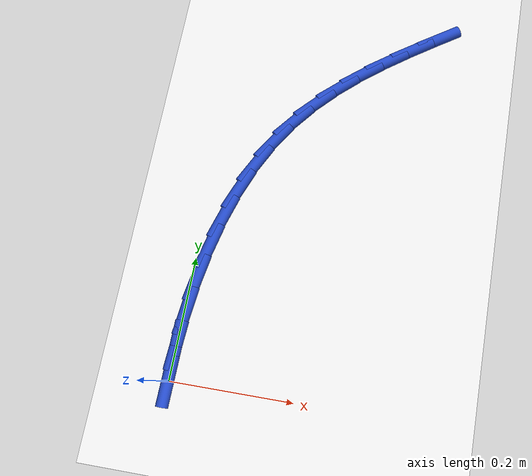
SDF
<sdf version="1.6">
 <world name="default">
  <model name="ground_plane">
   <static>1</static>
   <link name="link">
    <collision name="collision">
     <geometry><plane><normal>0 0 1</normal><size>100 100</size></plane></geometry>
     <surface><friction><ode><mu>100</mu><mu2>50</mu2></ode></friction></surface>
    </collision>
    <visual name="visual">
     <cast_shadows>0</cast_shadows>
     <geometry><plane><normal>0 0 1</normal><size>100 100</size></plane></geometry>
     <material>
      <script><uri>file://media/materials/scripts/gazebo.material</uri><name>Gazebo/WhiteGlow</name></script>
     </material>
    </visual>
   </link>
  </model>
  <model name="line">
   <link name="link_0">
    <pose>-6.938893903907228e-18 6.938893903907228e-17 0.01 0 1.57 1.5580120009399903</pose>
    <collision name="collision">
     <geometry><cylinder><radius>0.01</radius><length>0.08</length></cylinder></geometry>
    </collision>
    <visual name="visual">
     <material>
      <script><name>Gazebo/Blue</name><uri>file://media/materials/scripts/gazebo.material</uri></script>
     </material>
     <geometry><cylinder><radius>0.01</radius><length>0.08</length></cylinder></geometry>
    </visual>
   </link>
   <link name="link_1">
    <pose>0.0007160228598828777 0.05600481862712347 0.01 0 1.57 1.5114955153325835</pose>
    <collision name="collision">
     <geometry><cylinder><radius>0.01</radius><length>0.08</length></cylinder></geometry>
    </collision>
    <visual name="visual">
     <material>
      <script><name>Gazebo/Blue</name><uri>file://media/materials/scripts/gazebo.material</uri></script>
     </material>
     <geometry><cylinder><radius>0.01</radius><length>0.08</length></cylinder></geometry>
    </visual>
   </link>
   <link name="link_2">
    <pose>0.00403831065794808 0.11196345447744092 0.01 0 1.57 1.4606617564750028</pose>
    <collision name="collision">
     <geometry><cylinder><radius>0.01</radius><length>0.08</length></cylinder></geometry>
    </collision>
    <visual name="visual">
     <material>
      <script><name>Gazebo/Blue</name><uri>file://media/materials/scripts/gazebo.material</uri></script>
     </material>
     <geometry><cylinder><radius>0.01</radius><length>0.08</length></cylinder></geometry>
    </visual>
   </link>
   <link name="link_3">
    <pose>0.010165736958461995 0.16737413767874326 0.01 0 1.57 1.4043721562110711</pose>
    <collision name="collision">
     <geometry><cylinder><radius>0.01</radius><length>0.08</length></cylinder></geometry>
    </collision>
    <visual name="visual">
     <material>
      <script><name>Gazebo/Blue</name><uri>file://media/materials/scripts/gazebo.material</uri></script>
     </material>
     <geometry><cylinder><radius>0.01</radius><length>0.08</length></cylinder></geometry>
    </visual>
   </link>
   <link name="link_4">
    <pose>0.019297175325691 0.22173509835882108 0.01 0 1.57 1.3413468449461108</pose>
    <collision name="collision">
     <geometry><cylinder><radius>0.01</radius><length>0.08</length></cylinder></geometry>
    </collision>
    <visual name="visual">
     <material>
      <script><name>Gazebo/Blue</name><uri>file://media/materials/scripts/gazebo.material</uri></script>
     </material>
     <geometry><cylinder><radius>0.01</radius><length>0.08</length></cylinder></geometry>
    </visual>
   </link>
   <link name="link_5">
    <pose>0.03163149932390154 0.27454456664546545 0.01 0 1.57 1.2701608311914874</pose>
    <collision name="collision">
     <geometry><cylinder><radius>0.01</radius><length>0.08</length></cylinder></geometry>
    </collision>
    <visual name="visual">
     <material>
      <script><name>Gazebo/Blue</name><uri>file://media/materials/scripts/gazebo.material</uri></script>
     </material>
     <geometry><cylinder><radius>0.01</radius><length>0.08</length></cylinder></geometry>
    </visual>
   </link>
   <link name="link_6">
    <pose>0.04736758251735996 0.32530077266646706 0.01 0 1.57 1.1892843983154922</pose>
    <collision name="collision">
     <geometry><cylinder><radius>0.01</radius><length>0.08</length></cylinder></geometry>
    </collision>
    <visual name="visual">
     <material>
      <script><name>Gazebo/Blue</name><uri>file://media/materials/scripts/gazebo.material</uri></script>
     </material>
     <geometry><cylinder><radius>0.01</radius><length>0.08</length></cylinder></geometry>
    </visual>
   </link>
   <link name="link_7">
    <pose>0.06670429847033266 0.3735019465496166 0.01 0 1.57 1.0972035044235544</pose>
    <collision name="collision">
     <geometry><cylinder><radius>0.01</radius><length>0.08</length></cylinder></geometry>
    </collision>
    <visual name="visual">
     <material>
      <script><name>Gazebo/Blue</name><uri>file://media/materials/scripts/gazebo.material</uri></script>
     </material>
     <geometry><cylinder><radius>0.01</radius><length>0.08</length></cylinder></geometry>
    </visual>
   </link>
   <link name="link_8">
    <pose>0.0898405207470861 0.41864631842270505 0.01 0 1.57 0.9936608406311915</pose>
    <collision name="collision">
     <geometry><cylinder><radius>0.01</radius><length>0.08</length></cylinder></geometry>
    </collision>
    <visual name="visual">
     <material>
      <script><name>Gazebo/Blue</name><uri>file://media/materials/scripts/gazebo.material</uri></script>
     </material>
     <geometry><cylinder><radius>0.01</radius><length>0.08</length></cylinder></geometry>
    </visual>
   </link>
   <link name="link_9">
    <pose>0.11694663111718154 0.460278723929122 0.01 0 1.57 0.8915592658209748</pose>
    <collision name="collision">
     <geometry><cylinder><radius>0.01</radius><length>0.08</length></cylinder></geometry>
    </collision>
    <visual name="visual">
     <material>
      <script><name>Gazebo/Blue</name><uri>file://media/materials/scripts/gazebo.material</uri></script>
     </material>
     <geometry><cylinder><radius>0.01</radius><length>0.08</length></cylinder></geometry>
    </visual>
   </link>
   <link name="link_10">
    <pose>0.14783302362325507 0.4985328494251099 0.01 0 1.57 0.8023782002441536</pose>
    <collision name="collision">
     <geometry><cylinder><radius>0.01</radius><length>0.08</length></cylinder></geometry>
    </collision>
    <visual name="visual">
     <material>
      <script><name>Gazebo/Blue</name><uri>file://media/materials/scripts/gazebo.material</uri></script>
     </material>
     <geometry><cylinder><radius>0.01</radius><length>0.08</length></cylinder></geometry>
    </visual>
   </link>
   <link name="link_11">
    <pose>0.18206340806843252 0.5339458955520405 0.01 0 1.57 0.7282899464413584</pose>
    <collision name="collision">
     <geometry><cylinder><radius>0.01</radius><length>0.08</length></cylinder></geometry>
    </collision>
    <visual name="visual">
     <material>
      <script><name>Gazebo/Blue</name><uri>file://media/materials/scripts/gazebo.material</uri></script>
     </material>
     <geometry><cylinder><radius>0.01</radius><length>0.08</length></cylinder></geometry>
    </visual>
   </link>
   <link name="link_12">
    <pose>0.21919668286336333 0.5670629331970674 0.01 0 1.57 0.6699495018898777</pose>
    <collision name="collision">
     <geometry><cylinder><radius>0.01</radius><length>0.08</length></cylinder></geometry>
    </collision>
    <visual name="visual">
     <material>
      <script><name>Gazebo/Blue</name><uri>file://media/materials/scripts/gazebo.material</uri></script>
     </material>
     <geometry><cylinder><radius>0.01</radius><length>0.08</length></cylinder></geometry>
    </visual>
   </link>
   <link name="link_13">
    <pose>0.25879174641869707 0.5984290332473446 0.01 0 1.57 0.6271319856668433</pose>
    <collision name="collision">
     <geometry><cylinder><radius>0.01</radius><length>0.08</length></cylinder></geometry>
    </collision>
    <visual name="visual">
     <material>
      <script><name>Gazebo/Blue</name><uri>file://media/materials/scripts/gazebo.material</uri></script>
     </material>
     <geometry><cylinder><radius>0.01</radius><length>0.08</length></cylinder></geometry>
    </visual>
   </link>
   <link name="link_14">
    <pose>0.30040749714508286 0.6285892665900253 0.01 0 1.57 0.5991782193303513</pose>
    <collision name="collision">
     <geometry><cylinder><radius>0.01</radius><length>0.08</length></cylinder></geometry>
    </collision>
    <visual name="visual">
     <material>
      <script><name>Gazebo/Blue</name><uri>file://media/materials/scripts/gazebo.material</uri></script>
     </material>
     <geometry><cylinder><radius>0.01</radius><length>0.08</length></cylinder></geometry>
    </visual>
   </link>
   <link name="link_15">
    <pose>0.34360283345317055 0.6580887041122638 0.01 0 1.57 0.5853092490850328</pose>
    <collision name="collision">
     <geometry><cylinder><radius>0.01</radius><length>0.08</length></cylinder></geometry>
    </collision>
    <visual name="visual">
     <material>
      <script><name>Gazebo/Blue</name><uri>file://media/materials/scripts/gazebo.material</uri></script>
     </material>
     <geometry><cylinder><radius>0.01</radius><length>0.08</length></cylinder></geometry>
    </visual>
   </link>
   <link name="link_141">
    <pose>0.0006646500652258622 0.05605934094068449 0.01 0 1.57 1.5589406946452178</pose>
    <collision name="collision">
     <geometry><cylinder><radius>0.01</radius><length>0.08</length></cylinder></geometry>
    </collision>
    <visual name="visual">
     <material>
      <script><name>Gazebo/Blue</name><uri>file://media/materials/scripts/gazebo.material</uri></script>
     </material>
     <geometry><cylinder><radius>0.01</radius><length>0.08</length></cylinder></geometry>
    </visual>
   </link>
  </model>
 </world>
</sdf>
